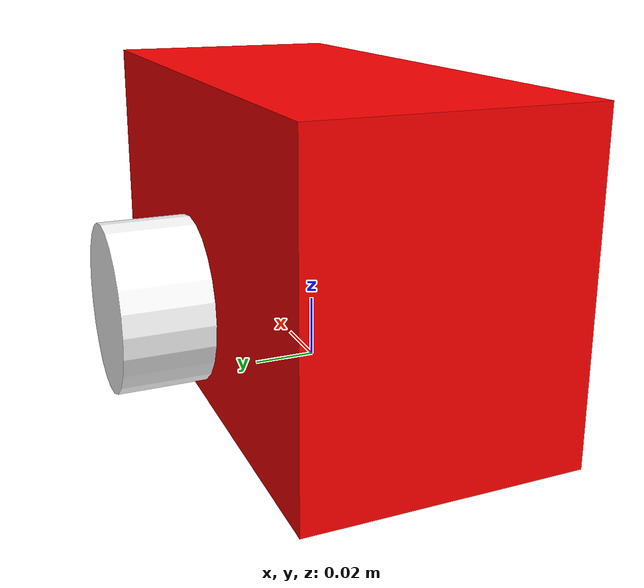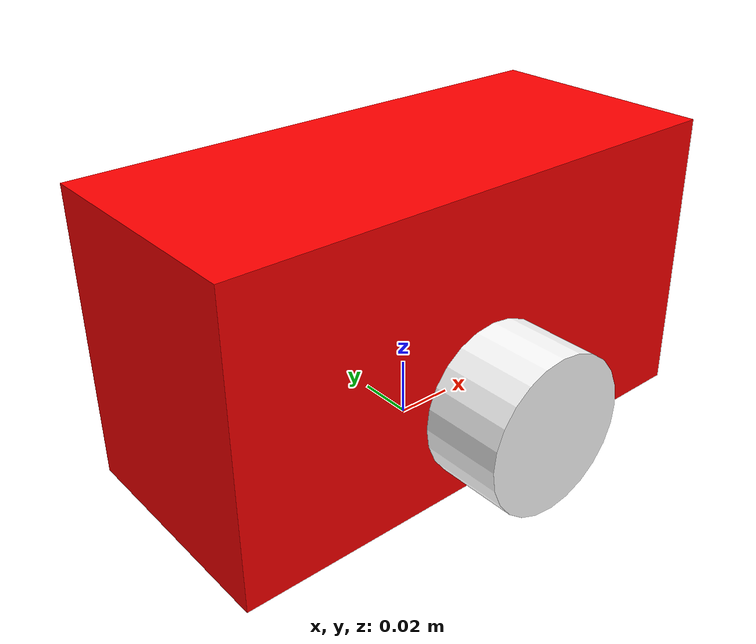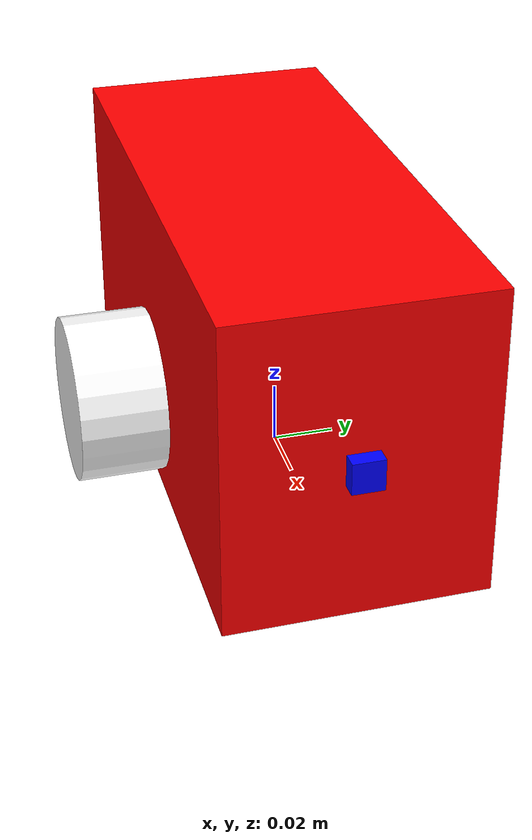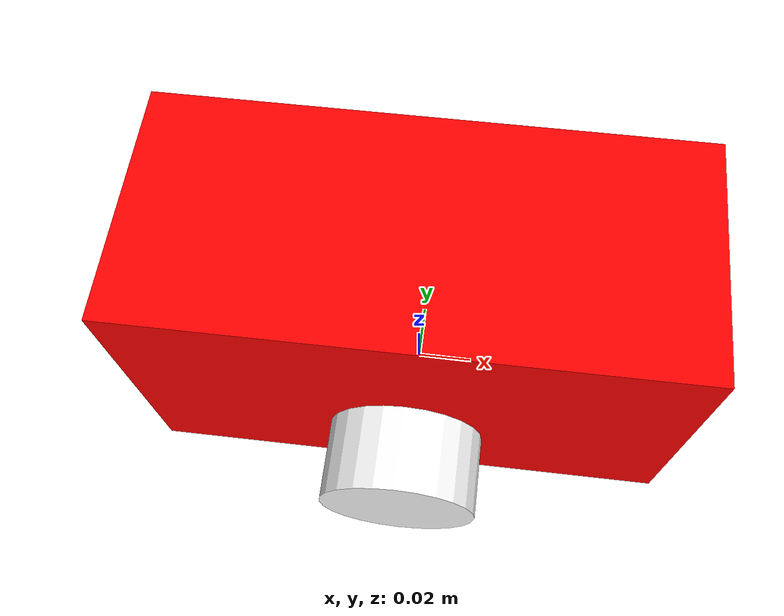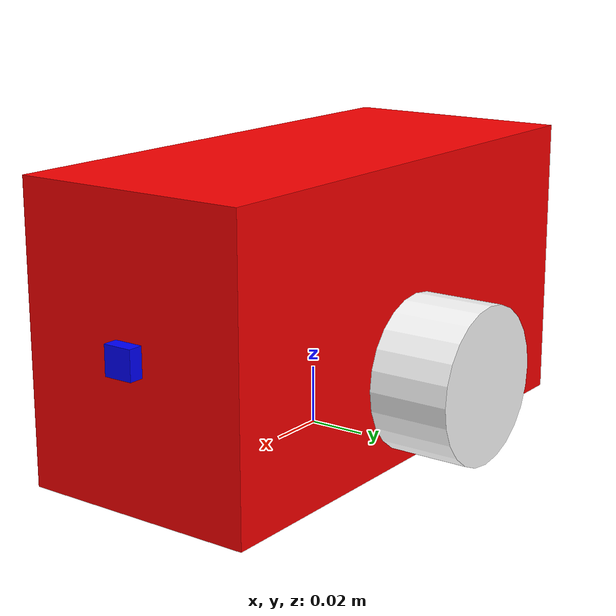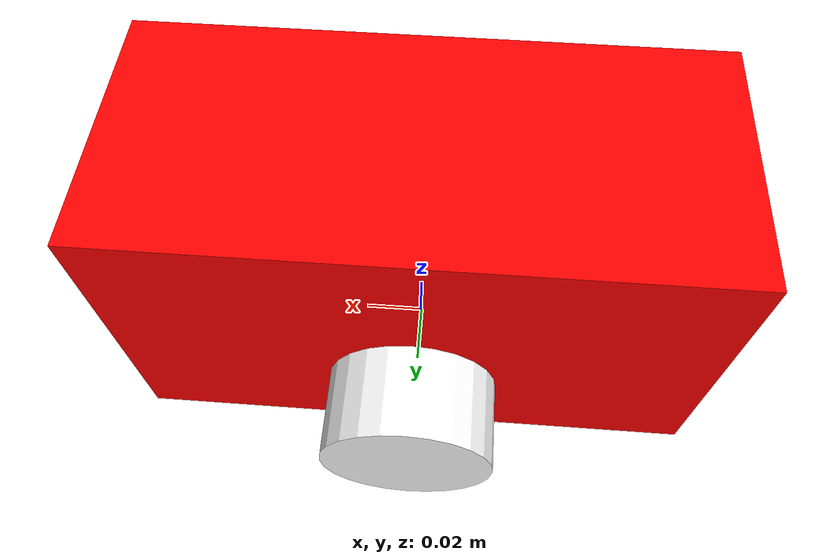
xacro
<?xml version="1.0"?>
<robot name="adoptee_robot" xmlns:xacro="http://ros.org/wiki/xacro">
    <!-- ****************** ROBOT CONSTANTS *******************************  -->
    <!-- Define the size of the robot's main chassis in meters -->
    <xacro:property name="K" value="1.0" />
    <xacro:property name="base_width" value="${0.082 * K}" />
    <xacro:property name="base_length" value="${0.183 * K}" />
    <xacro:property name="base_height" value="${0.1 * K}" />

    <!-- Define the shape of the robot's two back wheels in meters -->
    <xacro:property name="wheel_radius" value="${0.02645 * K}" />
    <xacro:property name="wheel_width" value="${0.04 * K}" />

    <!-- x-axis points forward, y-axis points to left, z-axis points upwards -->
    <!-- Define the gap between the wheel and chassis along y-axis in meters -->
    <xacro:property name="wheel_ygap" value="${0.0075 * K}" />

    <!-- Position the wheels along the z-axis -->
    <xacro:property name="wheel_zoff" value="${0.02 * K}" />

    <!-- Position the wheels along the x-axis -->
    <xacro:property name="wheel_xoff" value="${0.05 * K}" />

    <!-- Define intertial property macros  -->
    <xacro:macro name="box_inertia" params="m w h d">
        <inertial>
            <origin xyz="0 0 0" rpy="${pi/2} 0 ${pi/2}" />
            <mass value="${m}" />
            <inertia ixx="${(m/12) * (h*h + d*d)}" ixy="0.0" ixz="0.0" iyy="${(m/12) * (w*w + d*d)}"
                iyz="0.0" izz="${(m/12) * (w*w + h*h)}" />
        </inertial>
    </xacro:macro>

    <xacro:macro name="cylinder_inertia" params="m r h">
        <inertial>
            <origin xyz="0 0 0" rpy="${pi/2} 0 0" />
            <mass value="${m}" />
            <inertia ixx="${(m/12) * (3*r*r + h*h)}" ixy="0" ixz="0" iyy="${(m/12) * (3*r*r + h*h)}"
                iyz="0" izz="${(m/2) * (r*r)}" />
        </inertial>
    </xacro:macro>

    <xacro:macro name="sphere_inertia" params="m r">
        <inertial>
            <mass value="${m}" />
            <inertia ixx="${(2/5) * m * (r*r)}" ixy="0.0" ixz="0.0" iyy="${(2/5) * m * (r*r)}"
                iyz="0.0" izz="${(2/5) * m * (r*r)}" />
        </inertial>
    </xacro:macro>

    <!-- ****************** ROBOT BASE FOOTPRINT ***************************  -->
    <!-- Define the center of the main robot chassis projected on the ground -->
    <link name="base_footprint" />

    <!-- The base footprint of the robot is located underneath the chassis -->
    <joint name="base_joint" type="fixed">
        <parent link="base_footprint" />
        <child link="base_link" />
        <origin xyz="0.0 0.0 ${(wheel_radius+wheel_zoff)}" rpy="0 0 0" />
    </joint>

    <!-- ********************** ROBOT BASE *********************************  -->
    <link name="base_link">
        <visual>
            <geometry>
                <box size="${base_length} ${base_width} ${base_height}" />
            </geometry>
            <material name="Red">
                <color rgba="${255/255} ${0/255} ${0/255} 1.0" />
            </material>
        </visual>

        <collision>
            <geometry>
                <box size="${base_length} ${base_width} ${base_height}" />
            </geometry>
        </collision>

        <xacro:box_inertia m="40.0" w="${base_width}" d="${base_length}" h="${base_height}" />

    </link>

    <gazebo reference="base_link">
        <material>Gazebo/Red</material>
    </gazebo>

    <!-- *********************** DRIVE WHEELS ******************************  -->

    <xacro:macro name="rear_wheel" params="prefix x_reflect y_reflect">
        <link name="rear_${prefix}_wheel_link">
            <visual>
                <origin xyz="0 0 0" rpy="1.5707963267949 0 0" />
                <geometry>
                    <cylinder radius="${wheel_radius}" length="${wheel_width}" />
                </geometry>
                <material name="White">
                    <color rgba="${255/255} ${255/255} ${255/255} 1.0" />
                </material>
            </visual>

            <collision>
                <origin xyz="0 0 0" rpy="${pi/2} 0 0" />
                <geometry>
                    <cylinder radius="${wheel_radius}" length="${wheel_width}" />
                </geometry>
            </collision>

            <xacro:cylinder_inertia m="110.5" r="${wheel_radius}" h="${wheel_width}" />

        </link>

        <joint name="rear_${prefix}_wheel_joint" type="revolute">
            <parent link="base_link" />
            <child link="rear_${prefix}_wheel_link" />
            <origin
                xyz="${x_reflect*wheel_xoff} ${y_reflect*(base_width/2+wheel_ygap)} ${-wheel_zoff}"
                rpy="0 0 0" />
            <limit upper="3.1415" lower="-3.1415" effort="30" velocity="5.0" />
            <axis xyz="0 1 0" />
        </joint>
    </xacro:macro>

    <xacro:macro name="front_wheel" params="prefix x_reflect y_reflect">
        <link name="front_${prefix}_wheel_link">
            <visual>
                <origin xyz="0 0 0" rpy="1.5707963267949 0 0" />
                <geometry>
                    <cylinder radius="${wheel_radius}" length="${wheel_width}" />
                </geometry>
                <material name="White">
                    <color rgba="${255/255} ${255/255} ${255/255} 1.0" />
                </material>
            </visual>

            <collision>
                <origin xyz="0 0 0" rpy="${pi/2} 0 0" />
                <geometry>
                    <cylinder radius="${wheel_radius}" length="${wheel_width}" />
                </geometry>
            </collision>

            <xacro:cylinder_inertia m="110.5" r="${wheel_radius}" h="${wheel_width}" />

        </link>
        <joint name="front_${prefix}_wheel_joint" type="revolute">
            <parent link="base_link" />
            <child link="front_${prefix}_wheel_link" />
            <origin
                xyz="${x_reflect*wheel_xoff} ${y_reflect*(base_width/2+wheel_ygap)} ${-wheel_zoff}"
                rpy="0 0 0" />
            <limit upper="3.1415" lower="-3.1415" effort="30" velocity="5.0" />
            <axis xyz="0 1 0" />
        </joint>
    </xacro:macro>

    <xacro:front_wheel prefix="left" x_reflect="0" y_reflect="1" />
    <xacro:front_wheel prefix="right" x_reflect="0" y_reflect="-1" />

    <link name="imu_link">
        <visual>
            <origin
            xyz="0 0 0"
            rpy="0 1.57 0" />
            <geometry>
                <box size="0.001 0.01 0.01" />
            </geometry>
            <material name="Green">
                <color rgba="${0/255} ${255/255} ${0/255} 1.0" />
            </material>
        </visual>

        <collision>
            <geometry>
                <box size="0.01 0.1 0.1" />
            </geometry>
        </collision>

        <xacro:box_inertia m="40.0" w="0.01" d="0.1" h="0.1" />
    </link>

    <joint name="imu_joint" type="fixed">
        <parent link="base_link" />
        <child link="imu_link" />
        <origin
            xyz="0 0 0"
            rpy="0 0 0" />
    </joint>

    <link name="lidar_link">
        <visual>
            <geometry>
                <box size="0.01 0.01 0.01" />
            </geometry>
            <material name="Blue">
                <color rgba="${0/255} ${0/255} ${255/255} 1.0" />
            </material>
        </visual>

        <collision>
            <geometry>
                <box size="0.01 0.1 0.1" />
            </geometry>
        </collision>

        <xacro:box_inertia m="40.0" w="0.01" d="0.1" h="0.1" />
    </link>

    <joint name="lidar_joint" type="fixed">
        <parent link="base_link" />
        <child link="lidar_link" />
        <origin
            xyz="${base_length / 2} 0 0"
            rpy="0 0 0" />
    </joint>

    <ros2_control name="robot_motors_control" type="system">
        <hardware>
            <plugin>motor_hw/MotorHWInterface</plugin>
            <param name="left_wheel_joint">front_left_wheel_joint</param>
            <param name="right_wheel_joint">front_right_wheel_joint</param>
            <param name="enc_counts_per_rev">555</param>
            <param name="loop_rate">1</param>
            <param name="device">/dev/ttyUSB0</param>
        </hardware>
        <joint name="front_left_wheel_joint">
            <command_interface name="velocity" />
            <state_interface name="position" />
            <state_interface name="velocity" />
        </joint>
        <joint name="front_right_wheel_joint">
            <command_interface name="velocity" />
            <state_interface name="position" />
            <state_interface name="velocity" />
        </joint>
    </ros2_control>
</robot>
